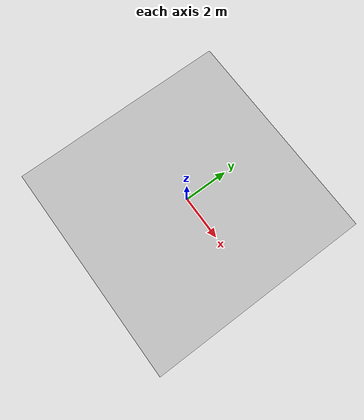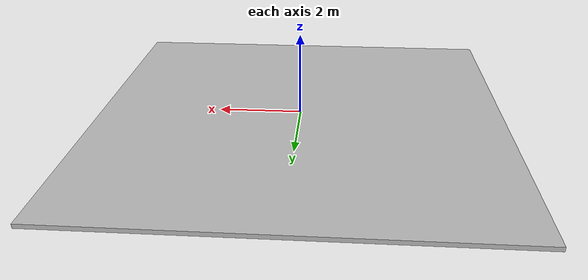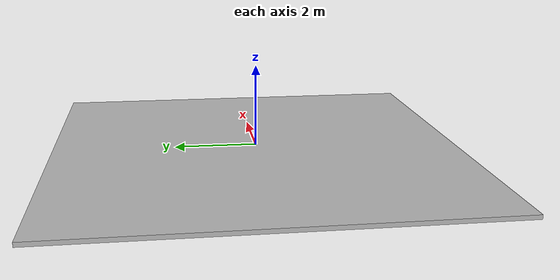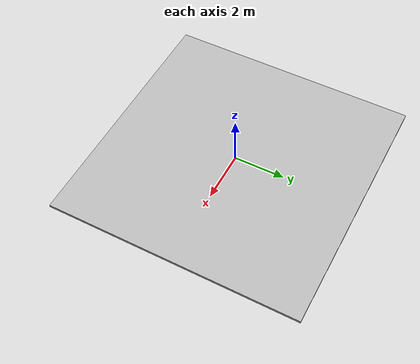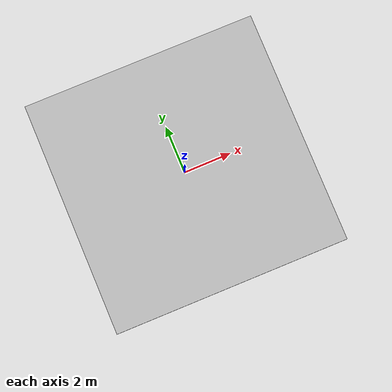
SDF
<?xml version="1.0"?>
<sdf version="1.4">
  <world name="default">
    <scene>
      <ambient>0 0 0 1</ambient>
      <shadows>0</shadows>
      <grid>0</grid>
      <background>0.7 0.7 0.7 1</background>
    </scene>
    <include>
      <uri>model://sun</uri>
    </include>
    <model name="ground">
      <pose>0 0 -0.1 0 0 1.57</pose>
      <static>1</static>
      <link name="ground">
        <collision name="ground_coll">
          <geometry>
            <box>
              <size>10 10 .1</size>
            </box>
          </geometry>
          <surface>
            <contact>
              <ode/>
            </contact>
          </surface>
        </collision>
        <visual name="ground_vis">
          <geometry>
            <box>
              <size>10 10 .1</size>
            </box>
          </geometry>
          <material>
            <script>
              <uri>model://track/materials/track.material</uri>
              <name>course</name>
            </script>
          </material>
        </visual>
      </link>
    </model>
  </world>
</sdf>
